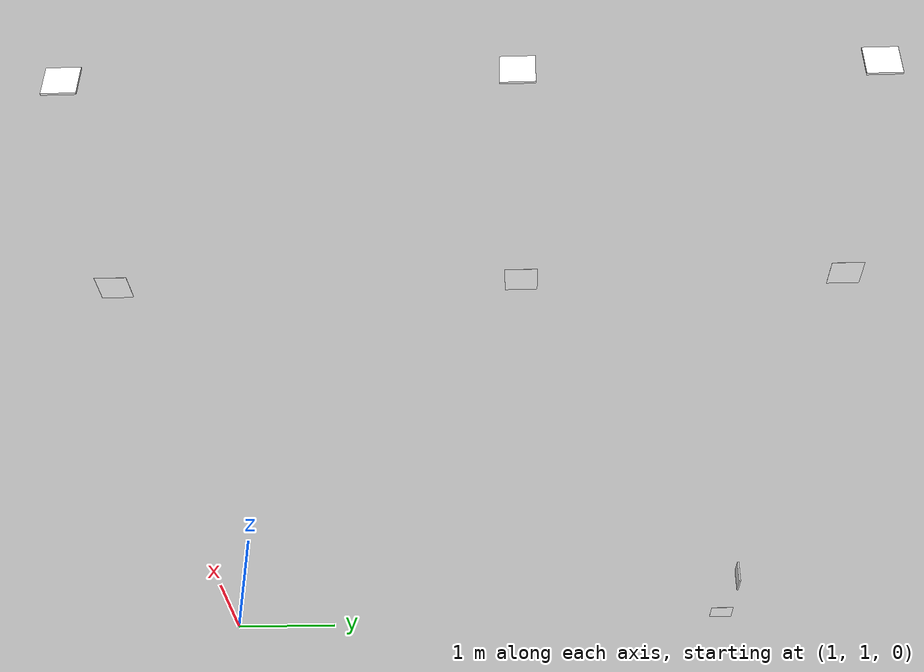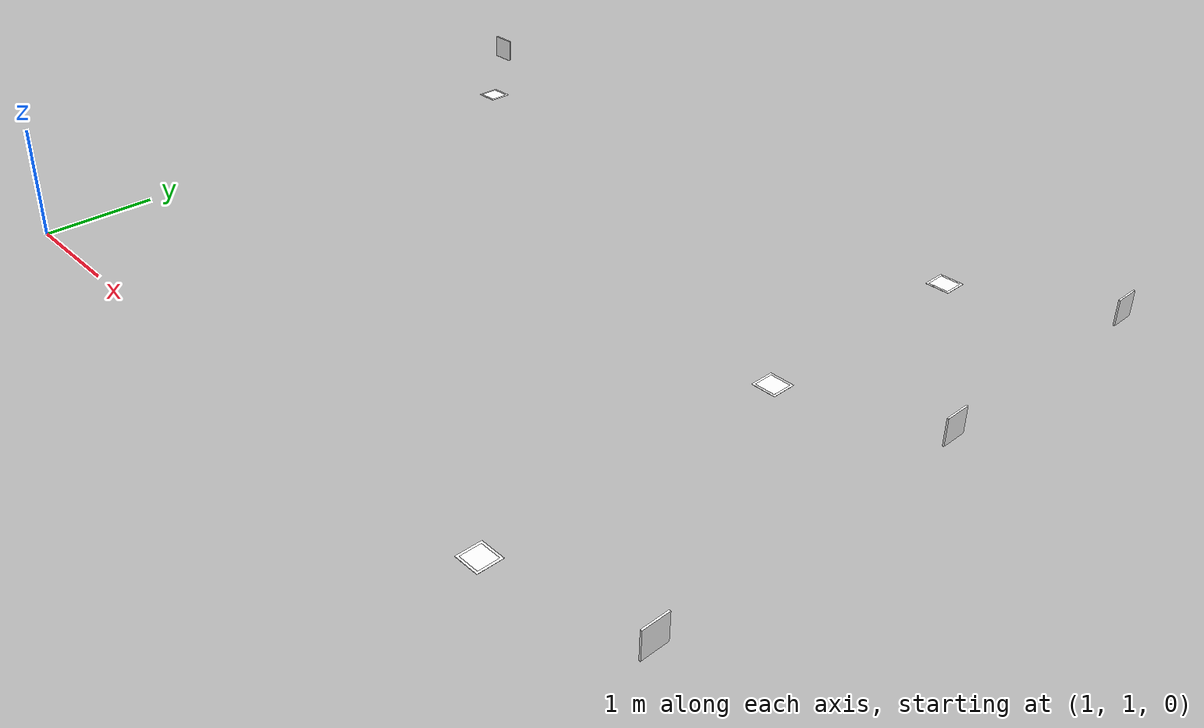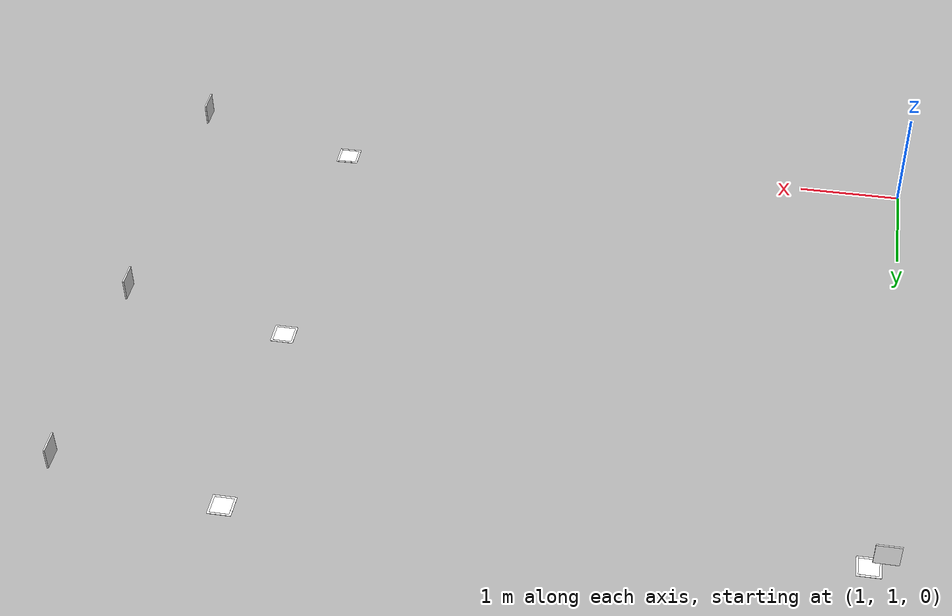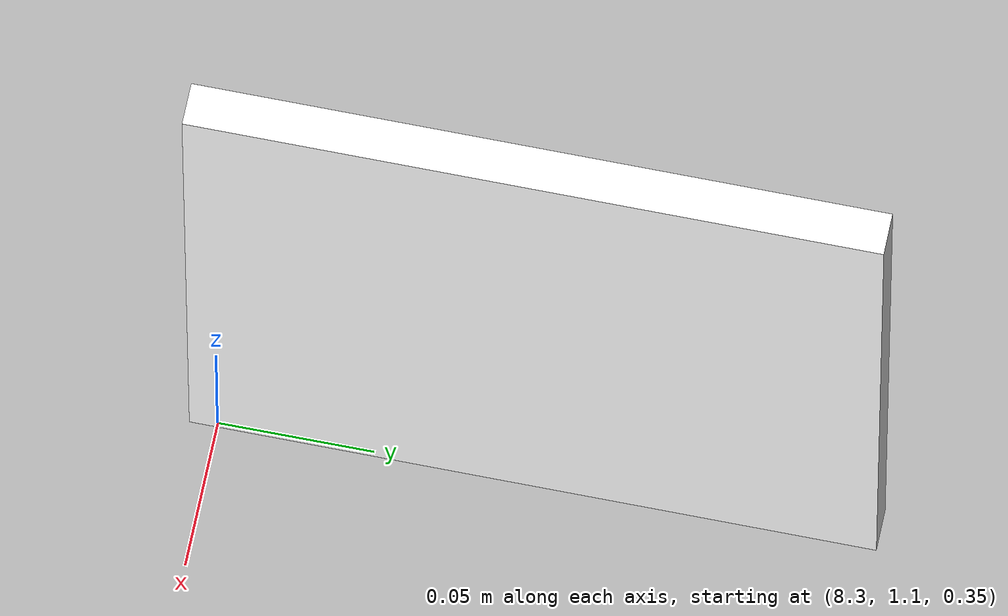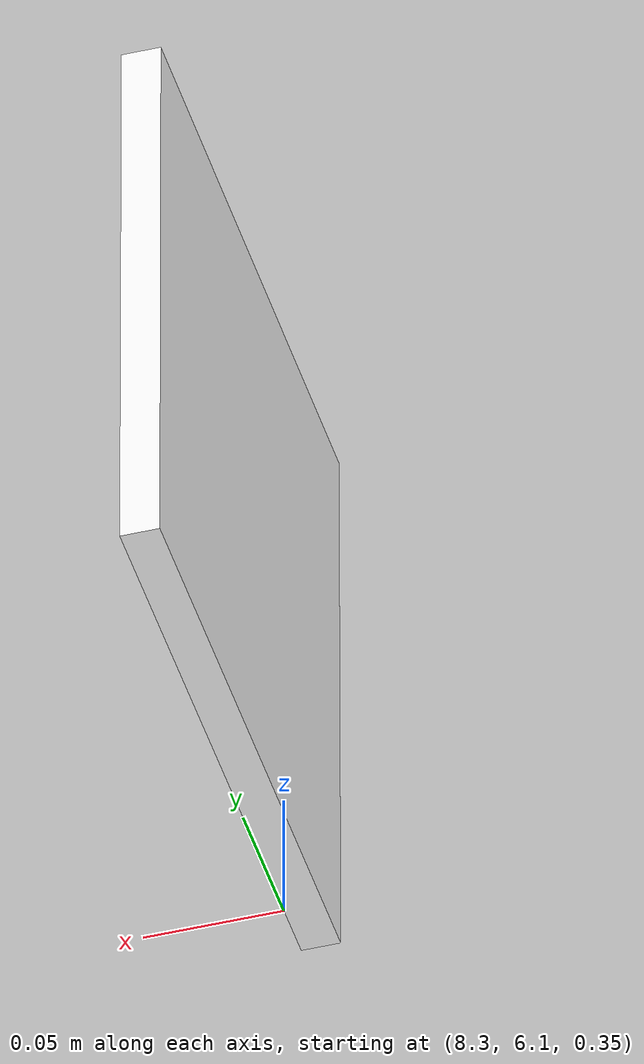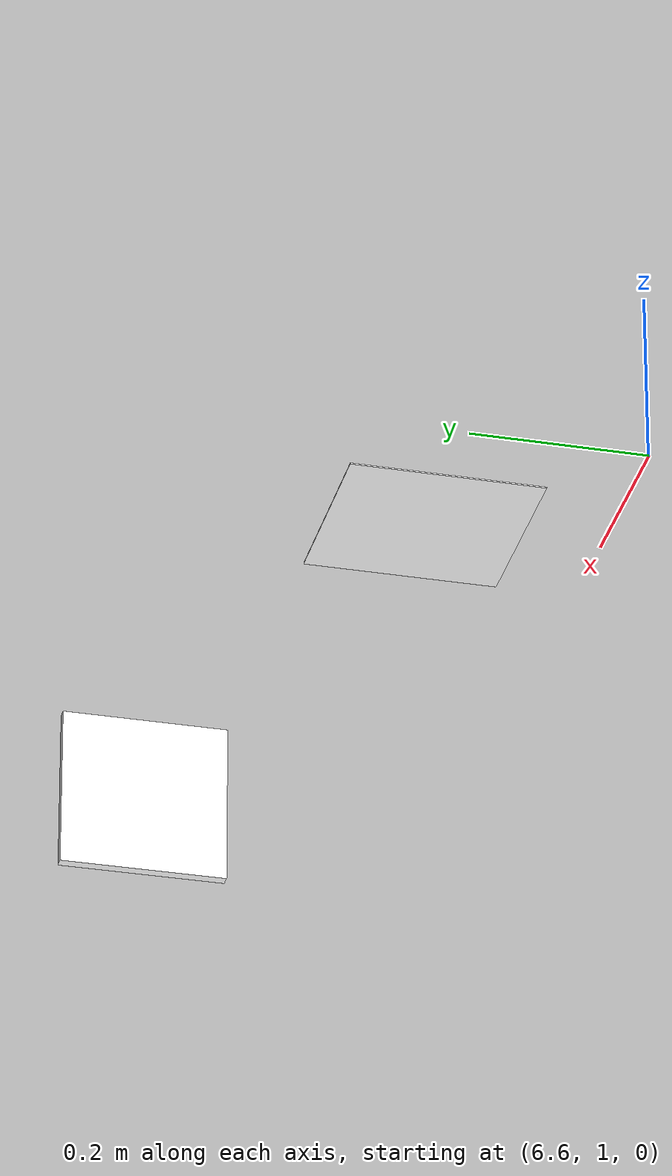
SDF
<?xml version="1.0" ?>
<sdf version="1.8">
  <model name="landmark_tags">
    <static>true</static>

    <link name="conveyor_approach_tag">
      <pose>1.1 6.225 0.45 0 0 1.5708</pose>
      <visual name="back_plate">
        <geometry>
          <box><size>0.014 0.22 0.22</size></box>
        </geometry>
        <material>
          <ambient>1 1 1 1</ambient>
          <diffuse>1 1 1 1</diffuse>
          <specular>0.1 0.1 0.1 1</specular>
        </material>
      </visual>
      <visual name="tag_face">
        <pose>-0.0025 0 0 0 0 0</pose>
        <geometry>
          <box><size>0.002 0.18 0.18</size></box>
        </geometry>
        <material>
          <ambient>1 1 1 1</ambient>
          <diffuse>1 1 1 1</diffuse>
          <specular>0.1 0.1 0.1 1</specular>
          <pbr>
            <metal>
              <albedo_map>model://landmark_tags/materials/textures/apriltag_101.png</albedo_map>
              <roughness>0.8</roughness>
              <metalness>0.0</metalness>
            </metal>
          </pbr>
        </material>
      </visual>
    </link>

    <link name="conveyor_align_tag">
      <pose>1.2 6.0 0.001 0 0 0</pose>
      <visual name="back_plate">
        <geometry>
          <box><size>0.22 0.22 0.0015</size></box>
        </geometry>
        <material>
          <ambient>1 1 1 1</ambient>
          <diffuse>1 1 1 1</diffuse>
          <specular>0.1 0.1 0.1 1</specular>
        </material>
      </visual>
      <visual name="tag_face">
        <pose>0 0 0.0006 0 0 0</pose>
        <geometry>
          <box><size>0.18 0.18 0.0005</size></box>
        </geometry>
        <material>
          <ambient>1 1 1 1</ambient>
          <diffuse>1 1 1 1</diffuse>
          <specular>0.1 0.1 0.1 1</specular>
          <pbr>
            <metal>
              <albedo_map>model://landmark_tags/materials/textures/apriltag_102.png</albedo_map>
              <roughness>0.8</roughness>
              <metalness>0.0</metalness>
            </metal>
          </pbr>
        </material>
      </visual>
    </link>

    <link name="shelf_a_s1_approach_tag">
      <pose>8.29 1.20 0.45 0 0 0</pose>
      <visual name="back_plate">
        <geometry>
          <box><size>0.014 0.22 0.22</size></box>
        </geometry>
        <material>
          <ambient>1 1 1 1</ambient>
          <diffuse>1 1 1 1</diffuse>
          <specular>0.1 0.1 0.1 1</specular>
        </material>
      </visual>
      <visual name="tag_face">
        <pose>-0.0025 0 0 0 0 0</pose>
        <geometry>
          <box><size>0.002 0.18 0.18</size></box>
        </geometry>
        <material>
          <ambient>1 1 1 1</ambient>
          <diffuse>1 1 1 1</diffuse>
          <specular>0.1 0.1 0.1 1</specular>
          <pbr>
            <metal>
              <albedo_map>model://landmark_tags/materials/textures/apriltag_201.png</albedo_map>
              <roughness>0.8</roughness>
              <metalness>0.0</metalness>
            </metal>
          </pbr>
        </material>
      </visual>
    </link>

    <link name="shelf_a_s1_align_tag">
      <pose>6.8 1.2 0.001 0 0 0</pose>
      <visual name="back_plate">
        <geometry>
          <box><size>0.22 0.22 0.0015</size></box>
        </geometry>
        <material>
          <ambient>1 1 1 1</ambient>
          <diffuse>1 1 1 1</diffuse>
          <specular>0.1 0.1 0.1 1</specular>
        </material>
      </visual>
      <visual name="tag_face">
        <pose>0 0 0.0006 0 0 0</pose>
        <geometry>
          <box><size>0.18 0.18 0.0005</size></box>
        </geometry>
        <material>
          <ambient>1 1 1 1</ambient>
          <diffuse>1 1 1 1</diffuse>
          <specular>0.1 0.1 0.1 1</specular>
          <pbr>
            <metal>
              <albedo_map>model://landmark_tags/materials/textures/apriltag_202.png</albedo_map>
              <roughness>0.8</roughness>
              <metalness>0.0</metalness>
            </metal>
          </pbr>
        </material>
      </visual>
    </link>

    <link name="shelf_a_s2_approach_tag">
      <pose>8.29 4.0 0.45 0 0 0</pose>
      <visual name="back_plate">
        <geometry>
          <box><size>0.014 0.22 0.22</size></box>
        </geometry>
        <material>
          <ambient>1 1 1 1</ambient>
          <diffuse>1 1 1 1</diffuse>
          <specular>0.1 0.1 0.1 1</specular>
        </material>
      </visual>
      <visual name="tag_face">
        <pose>-0.0025 0 0 0 0 0</pose>
        <geometry>
          <box><size>0.002 0.18 0.18</size></box>
        </geometry>
        <material>
          <ambient>1 1 1 1</ambient>
          <diffuse>1 1 1 1</diffuse>
          <specular>0.1 0.1 0.1 1</specular>
          <pbr>
            <metal>
              <albedo_map>model://landmark_tags/materials/textures/apriltag_211.png</albedo_map>
              <roughness>0.8</roughness>
              <metalness>0.0</metalness>
            </metal>
          </pbr>
        </material>
      </visual>
    </link>

    <link name="shelf_a_s2_align_tag">
      <pose>6.8 4.0 0.001 0 0 0</pose>
      <visual name="back_plate">
        <geometry>
          <box><size>0.22 0.22 0.0015</size></box>
        </geometry>
        <material>
          <ambient>1 1 1 1</ambient>
          <diffuse>1 1 1 1</diffuse>
          <specular>0.1 0.1 0.1 1</specular>
        </material>
      </visual>
      <visual name="tag_face">
        <pose>0 0 0.0006 0 0 0</pose>
        <geometry>
          <box><size>0.18 0.18 0.0005</size></box>
        </geometry>
        <material>
          <ambient>1 1 1 1</ambient>
          <diffuse>1 1 1 1</diffuse>
          <specular>0.1 0.1 0.1 1</specular>
          <pbr>
            <metal>
              <albedo_map>model://landmark_tags/materials/textures/apriltag_212.png</albedo_map>
              <roughness>0.8</roughness>
              <metalness>0.0</metalness>
            </metal>
          </pbr>
        </material>
      </visual>
    </link>

    <link name="shelf_b_s1_approach_tag">
      <pose>8.29 6.2 0.45 0 0 0</pose>
      <visual name="back_plate">
        <geometry>
          <box><size>0.014 0.22 0.22</size></box>
        </geometry>
        <material>
          <ambient>1 1 1 1</ambient>
          <diffuse>1 1 1 1</diffuse>
          <specular>0.1 0.1 0.1 1</specular>
        </material>
      </visual>
      <visual name="tag_face">
        <pose>-0.0025 0 0 0 0 0</pose>
        <geometry>
          <box><size>0.002 0.18 0.18</size></box>
        </geometry>
        <material>
          <ambient>1 1 1 1</ambient>
          <diffuse>1 1 1 1</diffuse>
          <specular>0.1 0.1 0.1 1</specular>
          <pbr>
            <metal>
              <albedo_map>model://landmark_tags/materials/textures/apriltag_221.png</albedo_map>
              <roughness>0.8</roughness>
              <metalness>0.0</metalness>
            </metal>
          </pbr>
        </material>
      </visual>
    </link>

    <link name="shelf_b_s1_align_tag">
      <pose>6.8 6.2 0.001 0 0 0</pose>
      <visual name="back_plate">
        <geometry>
          <box><size>0.22 0.22 0.0015</size></box>
        </geometry>
        <material>
          <ambient>1 1 1 1</ambient>
          <diffuse>1 1 1 1</diffuse>
          <specular>0.1 0.1 0.1 1</specular>
        </material>
      </visual>
      <visual name="tag_face">
        <pose>0 0 0.0006 0 0 0</pose>
        <geometry>
          <box><size>0.18 0.18 0.0005</size></box>
        </geometry>
        <material>
          <ambient>1 1 1 1</ambient>
          <diffuse>1 1 1 1</diffuse>
          <specular>0.1 0.1 0.1 1</specular>
          <pbr>
            <metal>
              <albedo_map>model://landmark_tags/materials/textures/apriltag_222.png</albedo_map>
              <roughness>0.8</roughness>
              <metalness>0.0</metalness>
            </metal>
          </pbr>
        </material>
      </visual>
    </link>
  </model>
</sdf>
